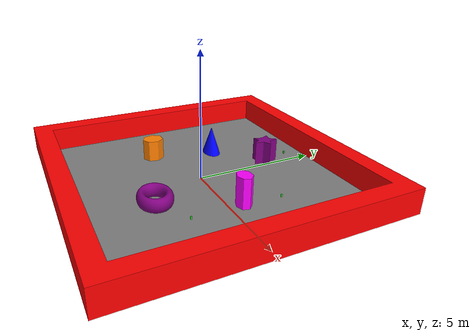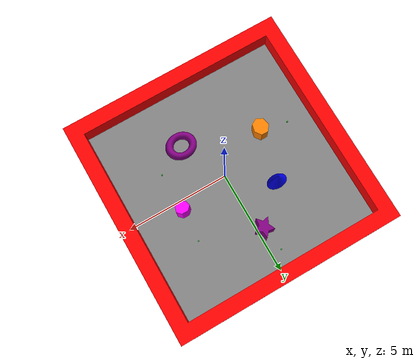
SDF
<sdf version="1.5">
 <world name="coop_world">
  <physics name="default_physics" default="0" type="ode">
   <gravity>0 0 -9.8066</gravity>
   <ode>
    <solver>
     <type>quick</type>
     <iters>10</iters>
     <sor>1.3</sor>
     <use_dynamic_moi_rescaling>0</use_dynamic_moi_rescaling>
    </solver>
    <constraints>
     <cfm>0</cfm>
     <erp>0.2</erp>
     <contact_max_correcting_vel>300</contact_max_correcting_vel>
     <contact_surface_layer>0.001</contact_surface_layer>
    </constraints>
   </ode>
   <max_step_size>0.004</max_step_size>
   <real_time_factor>1</real_time_factor>
   <real_time_update_rate>250</real_time_update_rate>
   <magnetic_field>6.0e-6 2.3e-5 -4.2e-5</magnetic_field>
  </physics>
  <light type="directional" name="sun">
   <pose>0 0 10 0 0 0</pose>
   <diffuse>0.8 0.8 0.8 1</diffuse>
   <specular>0.2 0.2 0.2 1</specular>
   <attenuation>
    <range>1000</range>
    <constant>0.9</constant>
    <linear>0.01</linear>
    <quadratic>0.001</quadratic>
   </attenuation>
   <direction>-0.5 0.1 -0.9</direction>
  </light>
  <model name="ground_plane">
   <static>true</static>
   <link name="link">
    <collision name="collision"><geometry><box><size>10 10 0.1</size></box></geometry></collision>
    <visual name="visual">
     <geometry><box><size>10 10 0.1</size></box></geometry>
     <material><ambient>0.5 0.5 0.5 1</ambient><diffuse>0.5 0.5 0.5 1</diffuse></material>
    </visual>
   </link>
  </model>
  <include><name>walls</name><uri>model://walls</uri></include>
  <include><name>obstacle_1</name><uri>model://obstacle_1</uri></include>
  <include><name>obstacle_2</name><uri>model://obstacle_2</uri></include>
  <include><name>obstacle_3</name><uri>model://obstacle_3</uri></include>
  <include><name>obstacle_4</name><uri>model://obstacle_4</uri></include>
  <include><name>obstacle_5</name><uri>model://obstacle_5</uri></include>
  <model name="box_1">
   <pose>2.5 -1.5 0.1 0 0 0</pose>
   <link name="link">
    <inertial><mass>0.5</mass><inertia><ixx>0.0002</ixx><iyy>0.0002</iyy><izz>0.0002</izz></inertia></inertial>
    <collision name="collision">
     <geometry><box><size>0.05 0.05 0.12</size></box></geometry>
     <surface>
      <friction><ode><mu>5.0</mu><mu2>5.0</mu2><slip1>0.0</slip1><slip2>0.0</slip2></ode></friction>
      <contact>
       <ode>
        <soft_cfm>1e-5</soft_cfm>
        <soft_erp>0.2</soft_erp>
        <contact_max_correcting_vel>0.5</contact_max_correcting_vel>
        <contact_surface_layer>0.001</contact_surface_layer>
       </ode>
      </contact>
     </surface>
    </collision>
    <visual name="visual">
     <geometry><box><size>0.05 0.05 0.12</size></box></geometry>
     <material><ambient>0.16 0.78 0.16 1</ambient><diffuse>0.16 0.78 0.16 1</diffuse></material>
    </visual>
   </link>
  </model>
  <model name="box_2">
   <pose>2.55 2.0 0.1 0 0 0</pose>
   <link name="link">
    <inertial><mass>0.5</mass><inertia><ixx>0.0002</ixx><iyy>0.0002</iyy><izz>0.0002</izz></inertia></inertial>
    <collision name="collision">
     <geometry><box><size>0.05 0.05 0.12</size></box></geometry>
     <surface>
      <friction><ode><mu>5.0</mu><mu2>5.0</mu2><slip1>0.0</slip1><slip2>0.0</slip2></ode></friction>
      <contact>
       <ode>
        <soft_cfm>1e-5</soft_cfm>
        <soft_erp>0.2</soft_erp>
        <contact_max_correcting_vel>0.5</contact_max_correcting_vel>
        <contact_surface_layer>0.001</contact_surface_layer>
       </ode>
      </contact>
     </surface>
    </collision>
    <visual name="visual">
     <geometry><box><size>0.05 0.05 0.12</size></box></geometry>
     <material><ambient>0.16 0.78 0.16 1</ambient><diffuse>0.16 0.78 0.16 1</diffuse></material>
    </visual>
   </link>
  </model>
  <model name="box_3">
   <pose>-0.5 4.2 0.1 0 0 0</pose>
   <link name="link">
    <inertial><mass>0.5</mass><inertia><ixx>0.0002</ixx><iyy>0.0002</iyy><izz>0.0002</izz></inertia></inertial>
    <collision name="collision">
     <geometry><box><size>0.05 0.05 0.12</size></box></geometry>
     <surface>
      <friction><ode><mu>5.0</mu><mu2>5.0</mu2><slip1>0.0</slip1><slip2>0.0</slip2></ode></friction>
      <contact>
       <ode>
        <soft_cfm>1e-5</soft_cfm>
        <soft_erp>0.2</soft_erp>
        <contact_max_correcting_vel>0.5</contact_max_correcting_vel>
        <contact_surface_layer>0.001</contact_surface_layer>
       </ode>
      </contact>
     </surface>
    </collision>
    <visual name="visual">
     <geometry><box><size>0.05 0.05 0.12</size></box></geometry>
     <material><ambient>0.16 0.78 0.16 1</ambient><diffuse>0.16 0.78 0.16 1</diffuse></material>
    </visual>
   </link>
  </model>
  <model name="box_4">
   <pose>-3.85 -0.8 0.1 0 0 0</pose>
   <link name="link">
    <inertial><mass>0.5</mass><inertia><ixx>0.0002</ixx><iyy>0.0002</iyy><izz>0.0002</izz></inertia></inertial>
    <collision name="collision">
     <geometry><box><size>0.05 0.05 0.12</size></box></geometry>
     <surface>
      <friction><ode><mu>5.0</mu><mu2>5.0</mu2><slip1>0.0</slip1><slip2>0.0</slip2></ode></friction>
      <contact>
       <ode>
        <soft_cfm>1e-5</soft_cfm>
        <soft_erp>0.2</soft_erp>
        <contact_max_correcting_vel>0.5</contact_max_correcting_vel>
        <contact_surface_layer>0.001</contact_surface_layer>
       </ode>
      </contact>
     </surface>
    </collision>
    <visual name="visual">
     <geometry><box><size>0.05 0.05 0.12</size></box></geometry>
     <material><ambient>0.16 0.78 0.16 1</ambient><diffuse>0.16 0.78 0.16 1</diffuse></material>
    </visual>
   </link>
  </model>
  <plugin filename="gz-sim-sensors-system" name="gz::sim::systems::Sensors">
   <render_engine>ogre2</render_engine>
  </plugin>
  <plugin filename="gz-sim-physics-system" name="gz::sim::systems::Physics"/>
  <plugin filename="gz-sim-user-commands-system" name="gz::sim::systems::UserCommands"/>
  <plugin filename="gz-sim-scene-broadcaster-system" name="gz::sim::systems::SceneBroadcaster"/>
 </world>
</sdf>

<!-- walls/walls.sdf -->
<sdf version="1.5">
  <model name="walls">
    <static>true</static>
    <link name="link">
      <pose>0.37 12.5 0 0 0 0</pose>
      <collision name="collision">
        <geometry>
            <mesh>
              <uri>
                model://walls/mesh/walls.stl
              </uri>
              <scale>
                0.9 0.9 0.1
              </scale>
            </mesh>
        </geometry>
      </collision>
      <visual name="visual">
        <cast_shadows>true</cast_shadows>
        <geometry>
            <mesh>
              <uri>
                model://walls/mesh/walls.stl
              </uri>
              <scale>
                0.9 0.9 0.1
              </scale>
            </mesh>
        </geometry>
        <material> <!-- color soft yellow -->
          <ambient>1 0 0 1</ambient>
          <diffuse>1 0 0 1</diffuse>
          <specular>0 0 0 0</specular>
          <emissive>0 0 0 1</emissive>
        </material>
      </visual>
    </link>
  </model>

</sdf>

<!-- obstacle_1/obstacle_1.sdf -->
<sdf version="1.5">

  <model name="obstacle_1">
  <static>true</static>
  <link name="link">
    <pose>0.37 12.5 0 0 0 0</pose>
    <collision name="collision">
      <geometry>
        <mesh>
          <uri>model://obstacle_1/mesh/obstacle_1.stl</uri>
          <scale>0.9 0.9 0.1</scale>
        </mesh>
      </geometry>
    </collision>
    <visual name="visual">
      <cast_shadows>true</cast_shadows>
      <geometry>
        <mesh>
          <uri>model://obstacle_1/mesh/obstacle_1.stl</uri>
          <scale>0.9 0.9 0.1</scale>
        </mesh>
      </geometry>
      <material>
        <ambient>0.5 0 0.5 1</ambient>
        <diffuse>0.5 0 0.5 1</diffuse>
        <specular>0 0 0 0</specular>
      </material>
    </visual>
  </link>
</model>
</sdf>

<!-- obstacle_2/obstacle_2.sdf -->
<sdf version="1.5">

  <model name="obstacle_2">
  <static>true</static>
  <link name="link">
    <pose>0.37 12.5 0 0 0 0</pose>
    <collision name="collision">
      <geometry>
        <mesh>
          <uri>model://obstacle_2/mesh/obstacle_2.stl</uri>
          <scale>0.9 0.9 0.1</scale>
        </mesh>
      </geometry>
    </collision>
    <visual name="visual">
      <cast_shadows>true</cast_shadows>
      <geometry>
        <mesh>
          <uri>model://obstacle_2/mesh/obstacle_2.stl</uri>
          <scale>0.9 0.9 0.1</scale>
        </mesh>
      </geometry>
      <material>
        <ambient>0 0 1 1</ambient>
        <diffuse>0 0 1 1</diffuse>
        <specular>0 0 0 0</specular>
      </material>
    </visual>
  </link>
</model>
</sdf>

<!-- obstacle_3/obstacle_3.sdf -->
<sdf version="1.5">

  <model name="obstacle_3">
  <static>true</static>
  <link name="link">
    <pose>0.37 12.5 0 0 0 0</pose>
    <collision name="collision">
      <geometry>
        <mesh>
          <uri>model://obstacle_3/mesh/obstacle_3.stl</uri>
          <scale>0.9 0.9 0.1</scale>
        </mesh>
      </geometry>
    </collision>
    <visual name="visual">
      <cast_shadows>true</cast_shadows>
      <geometry>
        <mesh>
          <uri>model://obstacle_3/mesh/obstacle_3.stl</uri>
          <scale>0.9 0.9 0.1</scale>
        </mesh>
      </geometry>
      <material>
        <ambient>1 0.5 0 1</ambient>
        <diffuse>1 0.5 0 1</diffuse>
        <specular>0 0 0 0</specular>
      </material>
    </visual>
  </link>
</model>
</sdf>

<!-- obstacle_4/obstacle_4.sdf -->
<sdf version="1.5">

  <model name="obstacle_4">
  <static>true</static>
  <link name="link">
    <pose>0.37 12.5 0 0 0 0</pose>
    <collision name="collision">
      <geometry>
        <mesh>
          <uri>model://obstacle_4/mesh/obstacle_4.stl</uri>
          <scale>0.9 0.9 0.1</scale>
        </mesh>
      </geometry>
    </collision>
    <visual name="visual">
      <cast_shadows>true</cast_shadows>
      <geometry>
        <mesh>
          <uri>model://obstacle_4/mesh/obstacle_4.stl</uri>
          <scale>0.9 0.9 0.1</scale>
        </mesh>
      </geometry>
      <material>
        <ambient>0.5 0 0.5 1</ambient>
        <diffuse>0.5 0 0.5 1</diffuse>
        <specular>0 0 0 0</specular>
      </material>
    </visual>
  </link>
</model>
</sdf>

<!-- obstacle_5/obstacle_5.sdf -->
<sdf version="1.5">

  <model name="obstacle_5">
  <static>true</static>
  <link name="link">
    <pose>0.37 12.5 0 0 0 0</pose>
    <collision name="collision">
      <geometry>
        <mesh>
          <uri>model://obstacle_5/mesh/obstacle_5.stl</uri>
          <scale>0.9 0.9 0.1</scale>
        </mesh>
      </geometry>
    </collision>
    <visual name="visual">
      <cast_shadows>true</cast_shadows>
      <geometry>
        <mesh>
          <uri>model://obstacle_5/mesh/obstacle_5.stl</uri>
          <scale>0.9 0.9 0.1</scale>
        </mesh>
      </geometry>
      <material>
        <ambient>1 0 1 1</ambient>
        <diffuse>1 0 1 1</diffuse>
        <specular>0 0 0 0</specular>
      </material>
    </visual>
  </link>
</model>
</sdf>
